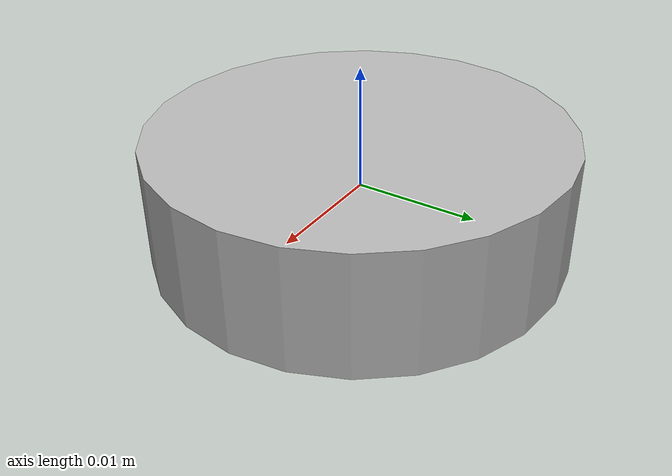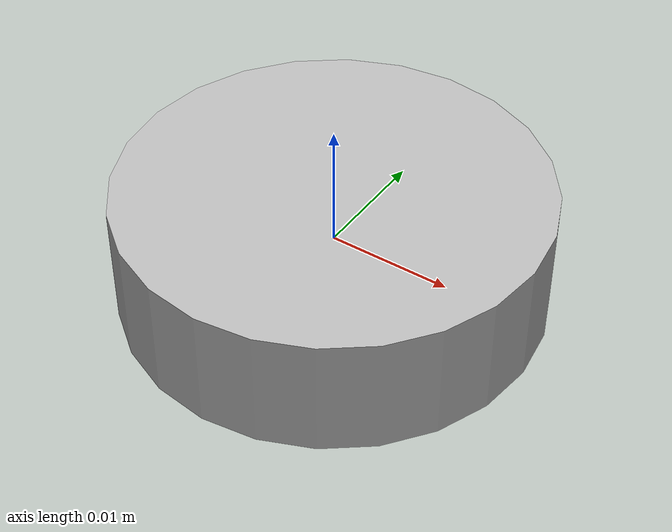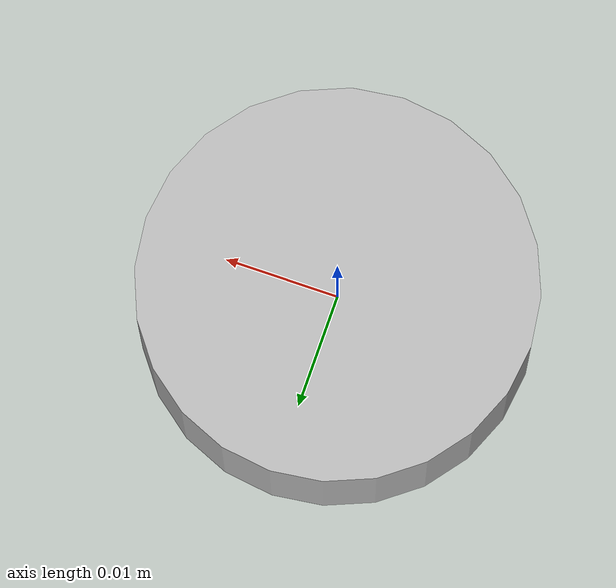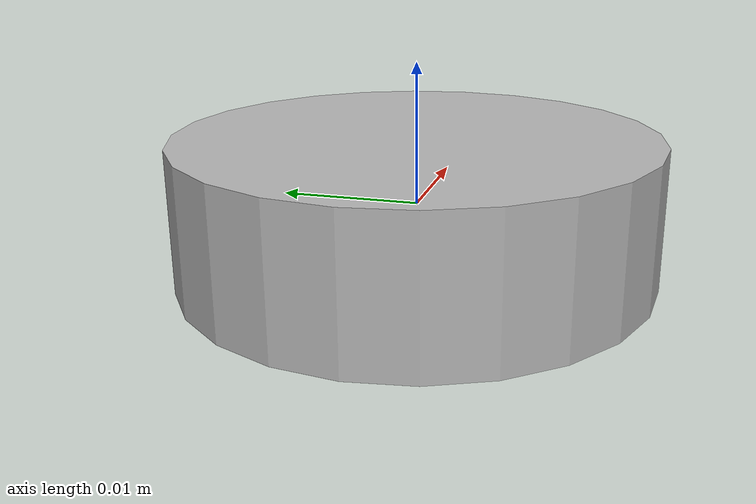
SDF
<?xml version='1.0'?>
<sdf version="1.6">
  <model name="cylinder_measure">
    <pose>0 0 0.0 0 0 0</pose>
    <static>true</static>
    <link name="link">
      <inertial>
        <mass>1.0</mass>
        <inertia> <!-- inertias are tricky to compute -->
          <!-- http://gazebosim.org/tutorials?tut=inertia&cat=build_robot -->
          <ixx>0.083</ixx>       <!-- for a box: ixx = 0.083 * mass * (y*y + z*z) -->
          <ixy>0.0</ixy>         <!-- for a box: ixy = 0 -->
          <ixz>0.0</ixz>         <!-- for a box: ixz = 0 -->
          <iyy>0.083</iyy>       <!-- for a box: iyy = 0.083 * mass * (x*x + z*z) -->
          <iyz>0.0</iyz>         <!-- for a box: iyz = 0 -->
          <izz>0.083</izz>       <!-- for a box: izz = 0.083 * mass * (x*x + y*y) -->
        </inertia>
      </inertial>
      <collision name="collision">
        <geometry>
          <cylinder>
            <radius>0.017</radius>	<!-- 0.034 should be a size of circle defined in VISP calibration
						0.034/2=0.017-->
            <length>0.01</length>
          </cylinder>
        </geometry>
      </collision>
      <visual name="visual">
        <geometry>
          <cylinder>
            <radius>0.017</radius>	<!-- 0.034 should be a size of circle defined in VISP calibration
						0.034/2=0.017-->
            <length>0.01</length>
          </cylinder>
        </geometry>
      </visual>
    </link>
  </model>
</sdf>
